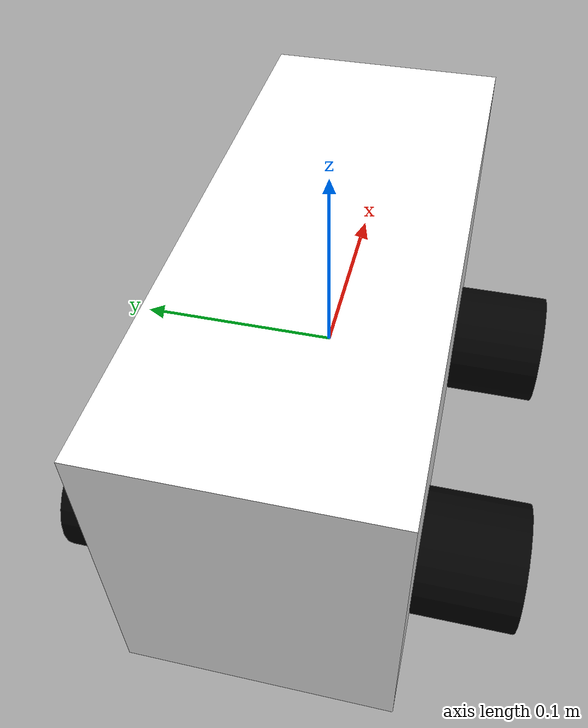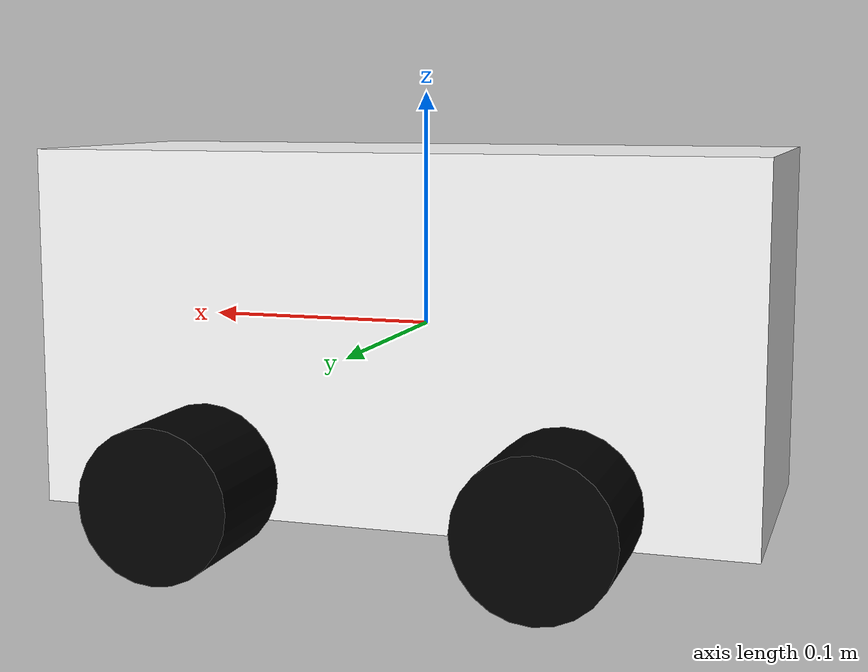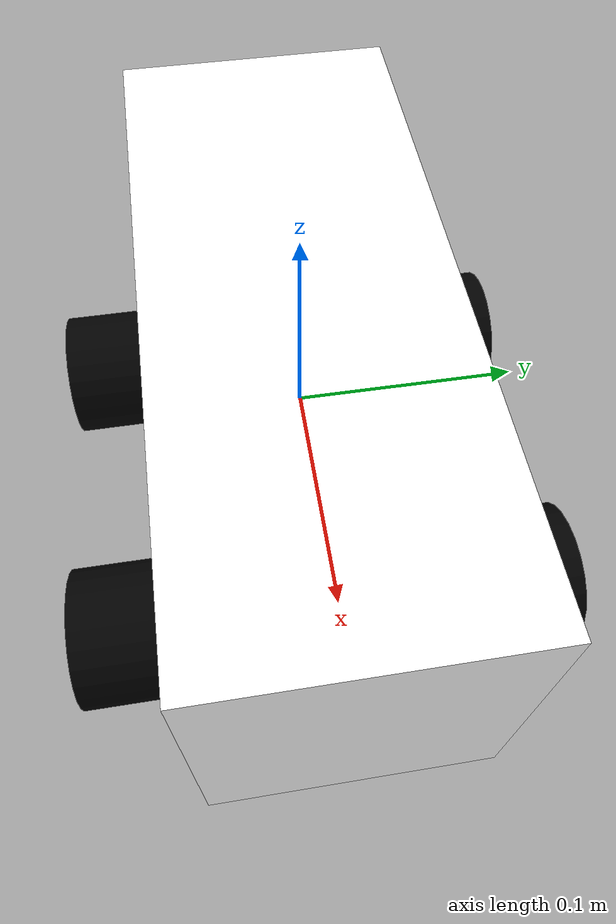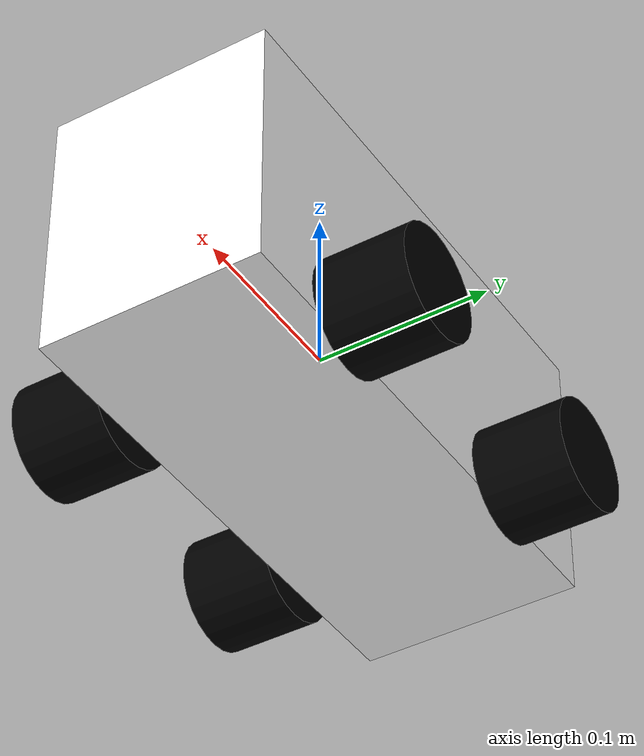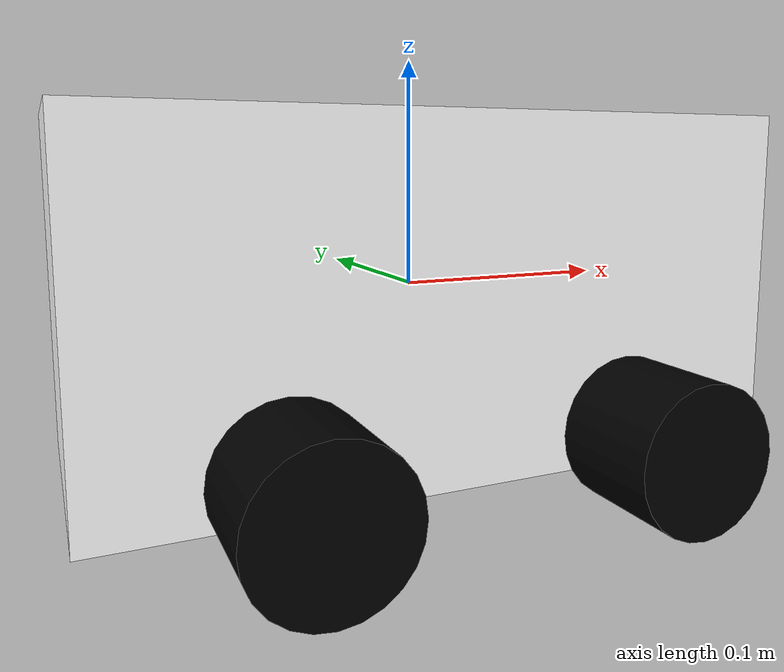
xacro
<?xml version="1.0"?>
<robot xmlns:xacro="http://www.ros.org/wiki/xacro">

    <xacro:include filename="inertial_macros.xacro" />

    <!-- Setup Robot structure -->
    <link name="base_link"></link>

    <!-- ROBOT CHASSIS -->
    <joint name="chassis_joint" type="fixed">
        <parent link="base_link"/>
        <child link="chassis"/>
        <origin xyz="0 0 -0.0"/>
    </joint>

    <link name="chassis">
        <visual>
            <origin xyz="0 0 0" rpy="0 0 0"/>
            <geometry>
                <box size="0.3048 0.127 0.1524"/>
            </geometry>
            <material name="white"/>
        </visual>
        <collision>
            <origin xyz="0.0 0 0.0" rpy="0 0 0"/>
            <geometry>
                <box size="0.3048 0.127 0.14605"/>
            </geometry>
        </collision>
        <xacro:inertial_box mass="0.5" x="0.3048" y="0.127" z="0.1524">
            <origin xyz="0 0 0" rpy="0 0 0"/>
        </xacro:inertial_box>
    </link>

    <!-- LEFT FRONT WHEEL -->
    <joint name="front_left_wheel_joint" type="continuous">
        <parent link="base_link"/>
        <child link="front_left_wheel"/>
        <origin xyz="0.0762 -0.0889 -0.060325" rpy="-${pi/2} 0 0"/>
        <axis xyz="0 0 1"/>
    </joint>

    <link name="front_left_wheel">
        <visual>
            <geometry>
                <cylinder length="0.0508" radius="0.03175" />/>
            </geometry>
            <material name="black"/>
        </visual>
        <collision>
            <origin xyz="0.0 0 0.0" rpy="0 0 0"/>
            <geometry>
                <cylinder length="0.0508" radius="0.03175" />/>
            </geometry>
        </collision>
        <xacro:inertial_cylinder mass="0.1" length="0.0508" radius="0.03175">
            <origin xyz="0 0 0" rpy="0 0 0"/>
        </xacro:inertial_cylinder>
    </link>

    <!-- RIGHT FRONT WHEEL -->
    <joint name="front_right_wheel_joint" type="continuous">
        <parent link="base_link"/>
        <child link="front_right_wheel"/>
        <origin xyz="-0.0762 -0.0889 -0.060325" rpy="${pi/2} 0 0"/>
        <axis xyz="0 0 -1"/>
    </joint>

    <link name="front_right_wheel">
        <visual>
            <geometry>
                <cylinder length="0.0508" radius="0.03175" />/>
            </geometry>
            <material name="black"/>
        </visual>
         <collision>
            <origin xyz="0.0 0 0.0" rpy="0 0 0"/>
            <geometry>
                <cylinder length="0.0508" radius="0.03175" />/>
            </geometry>
        </collision>
        <xacro:inertial_cylinder mass="0.1" length="0.0508" radius="0.03175">
            <origin xyz="0 0 0" rpy="0 0 0"/>
        </xacro:inertial_cylinder>
    </link>

    <!-- LEFT BACK WHEEL -->
    <joint name="rear_left_wheel_joint" type="continuous">
        <parent link="base_link"/>
        <child link="rear_left_wheel"/>
        <origin xyz="-0.0762 0.0889 -0.060325" rpy="-${pi/2} 0 0"/>
        <axis xyz="0 0 1"/>
    </joint>

    <link name="rear_left_wheel">
        <visual>
            <geometry>
                <cylinder length="0.0508" radius="0.03175" />/>
            </geometry>
            <material name="black"/>
        </visual>
         <collision>
            <origin xyz="0.0 0 0.0" rpy="0 0 0"/>
            <geometry>
                <cylinder length="0.0508" radius="0.03175" />/>
            </geometry>
        </collision>
        <xacro:inertial_cylinder mass="0.1" length="0.0508" radius="0.03175">
            <origin xyz="0 0 0" rpy="0 0 0"/>
        </xacro:inertial_cylinder>
    </link>

    <!-- RIGHT BACK WHEEL -->
    <joint name="rear_right_wheel_joint" type="continuous">
        <parent link="base_link"/>
        <child link="rear_right_wheel"/>
        <origin xyz="0.0762 0.0889 -0.060325" rpy="${pi/2} 0 0"/>
        <axis xyz="0 0 -1"/>
    </joint>

    <link name="rear_right_wheel">
        <visual>
            <geometry>
                <cylinder length="0.0508" radius="0.03175" />/>
            </geometry>
            <material name="black"/>
        </visual>
         <collision>
            <origin xyz="0.0 0 0.0" rpy="0 0 0"/>
            <geometry>
                <cylinder length="0.0508" radius="0.03175" />/>
            </geometry>
        </collision>
        <xacro:inertial_cylinder mass="0.1" length="0.0508" radius="0.03175">
            <origin xyz="0 0 0" rpy="0 0 0"/>
        </xacro:inertial_cylinder>
    </link>

    <!-- Setup colors -->
    <material name="white">
        <color rgba="1 1 1 1"/>
    </material>

    <material name="orange">
        <color rgba="1 0.3 0.1 1"/>
    </material>

    <material name="blue">
        <color rgba="0.2 0.2 1 1"/>
    </material>

    <material name="black">
        <color rgba="0 0 0 1"/>
    </material>

    <gazebo reference="chassis">
        <material>Gazebo/Red</material>
    </gazebo>

    <gazebo reference="front_left_wheel">
        <material>Gazebo/Black</material>
    </gazebo>

    <gazebo reference="front_right_wheel">
        <material>Gazebo/Black</material>
    </gazebo>

    <gazebo reference="rear_left_wheel">
        <material>Gazebo/Black</material>
    </gazebo>

    <gazebo reference="rear_right_wheel">
        <material>Gazebo/Black</material>
    </gazebo>

</robot>
